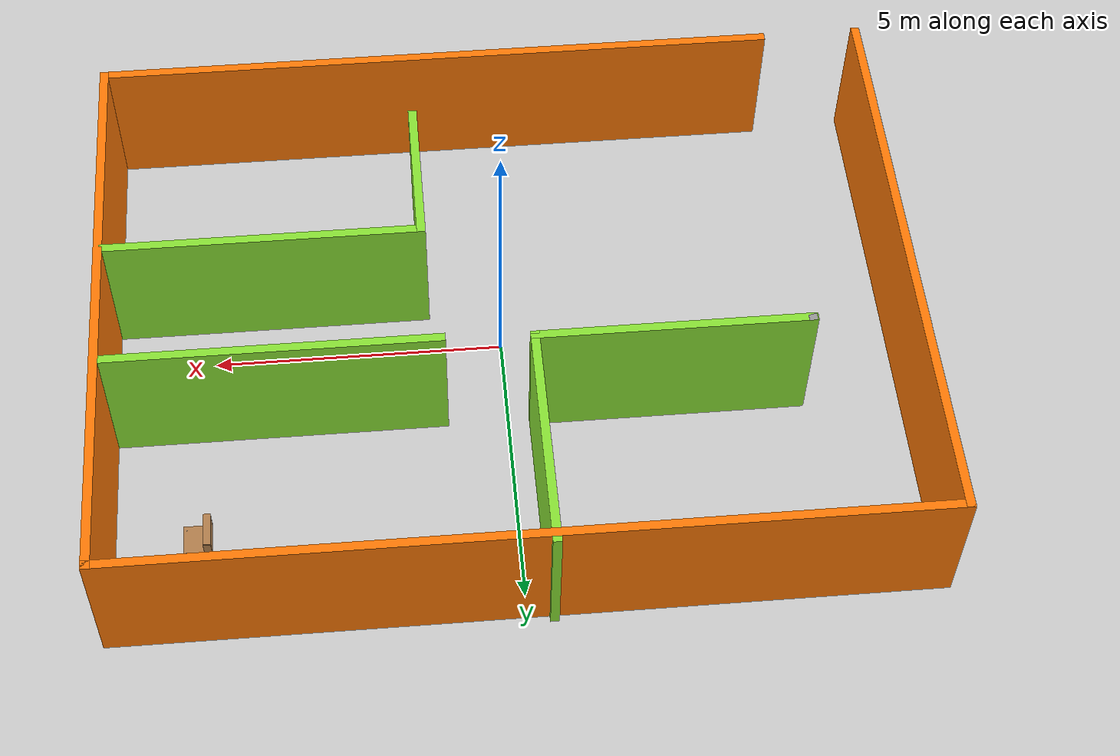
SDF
<sdf version="1.6">
 <world name="default">
  <model name="ground_plane">
   <static>1</static>
   <link name="link">
    <collision name="collision">
     <geometry><plane><normal>0 0 1</normal><size>100 100</size></plane></geometry>
     <surface>
      <contact><collide_bitmask>65535</collide_bitmask></contact>
      <friction><ode><mu>100</mu><mu2>50</mu2></ode></friction>
     </surface>
    </collision>
    <visual name="visual">
     <cast_shadows>0</cast_shadows>
     <geometry><plane><normal>0 0 1</normal><size>100 100</size></plane></geometry>
     <material>
      <script><uri>file://media/materials/scripts/gazebo.material</uri><name>Gazebo/Grey</name></script>
     </material>
    </visual>
   </link>
  </model>
  <model name="mod1">
   <pose>-0.05712 0.335817 0 0 -0 0</pose>
   <link name="Wall_0">
    <collision name="Wall_0_Collision">
     <geometry><box><size>10.25 0.15 2.5</size></box></geometry>
     <pose>0 0 1.25 0 -0 0</pose>
    </collision>
    <visual name="Wall_0_Visual">
     <pose>0 0 1.25 0 -0 0</pose>
     <geometry><box><size>10.25 0.15 2.5</size></box></geometry>
     <material>
      <script><uri>file://media/materials/scripts/gazebo.material</uri><name>Gazebo/Grey</name></script>
      <ambient>0.996078 0.47451 0.0196078 1</ambient>
     </material>
     <meta><layer>0</layer></meta>
    </visual>
    <pose>-6.8 -0.050462 0 0 -0 1.5708</pose>
   </link>
   <link name="Wall_1">
    <collision name="Wall_1_Collision">
     <geometry><box><size>13.75 0.15 2.5</size></box></geometry>
     <pose>0 0 1.25 0 -0 0</pose>
    </collision>
    <visual name="Wall_1_Visual">
     <pose>0 0 1.25 0 -0 0</pose>
     <geometry><box><size>13.75 0.15 2.5</size></box></geometry>
     <material>
      <script><uri>file://media/materials/scripts/gazebo.material</uri><name>Gazebo/Grey</name></script>
      <ambient>0.996078 0.47451 0.0196078 1</ambient>
     </material>
     <meta><layer>0</layer></meta>
    </visual>
    <pose>0 4.99954 0 0 -0 0</pose>
   </link>
   <link name="Wall_10">
    <collision name="Wall_10_Collision">
     <geometry><box><size>5.75 0.15 2.5</size></box></geometry>
     <pose>0 0 1.25 0 -0 0</pose>
    </collision>
    <visual name="Wall_10_Visual">
     <pose>0 0 1.25 0 -0 0</pose>
     <geometry><box><size>5.75 0.15 2.5</size></box></geometry>
     <material>
      <script><uri>file://media/materials/scripts/gazebo.material</uri><name>Gazebo/Grey</name></script>
      <ambient>0.541176 0.886275 0.203922 1</ambient>
     </material>
     <meta><layer>0</layer></meta>
    </visual>
    <pose>3.95816 1.17627 0 0 -0 0</pose>
   </link>
   <link name="Wall_13">
    <collision name="Wall_13_Collision">
     <geometry><box><size>5.5 0.15 2.5</size></box></geometry>
     <pose>0 0 1.25 0 -0 0</pose>
    </collision>
    <visual name="Wall_13_Visual">
     <pose>0 0 1.25 0 -0 0</pose>
     <geometry><box><size>5.5 0.15 2.5</size></box></geometry>
     <material>
      <script><uri>file://media/materials/scripts/gazebo.material</uri><name>Gazebo/Grey</name></script>
      <ambient>0.541176 0.886275 0.203922 1</ambient>
     </material>
     <meta><layer>0</layer></meta>
    </visual>
    <pose>4.02558 -1.1297 0 0 -0 3.14159</pose>
   </link>
   <link name="Wall_14">
    <collision name="Wall_14_Collision">
     <geometry><box><size>2.75 0.15 2.5</size></box></geometry>
     <pose>0 0 1.25 0 -0 0</pose>
    </collision>
    <visual name="Wall_14_Visual">
     <pose>0 0 1.25 0 -0 0</pose>
     <geometry><box><size>2.75 0.15 2.5</size></box></geometry>
     <material>
      <script><uri>file://media/materials/scripts/gazebo.material</uri><name>Gazebo/Grey</name></script>
      <ambient>0.541176 0.886275 0.203922 1</ambient>
     </material>
     <meta><layer>0</layer></meta>
    </visual>
    <pose>1.35058 -2.4297 0 0 -0 -1.5708</pose>
   </link>
   <link name="Wall_2">
    <collision name="Wall_2_Collision">
     <geometry><box><size>10.25 0.15 2.5</size></box></geometry>
     <pose>0 0 1.25 0 -0 0</pose>
    </collision>
    <visual name="Wall_2_Visual">
     <pose>0 0 1.25 0 -0 0</pose>
     <geometry><box><size>10.25 0.15 2.5</size></box></geometry>
     <material>
      <script><uri>file://media/materials/scripts/gazebo.material</uri><name>Gazebo/Grey</name></script>
      <ambient>0.996078 0.47451 0.0196078 1</ambient>
     </material>
     <meta><layer>0</layer></meta>
    </visual>
    <pose>6.8 -0.050462 0 0 -0 -1.5708</pose>
   </link>
   <link name="Wall_3">
    <collision name="Wall_3_Collision">
     <geometry><box><size>12 0.15 2.5</size></box></geometry>
     <pose>0 0 1.25 0 -0 0</pose>
    </collision>
    <visual name="Wall_3_Visual">
     <pose>0 0 1.25 0 -0 0</pose>
     <geometry><box><size>12 0.15 2.5</size></box></geometry>
     <material>
      <script><uri>file://media/materials/scripts/gazebo.material</uri><name>Gazebo/Grey</name></script>
      <ambient>0.996078 0.47451 0.0196078 1</ambient>
     </material>
     <meta><layer>0</layer></meta>
    </visual>
    <pose>0.875 -5.10046 0 0 -0 3.14159</pose>
   </link>
   <link name="Wall_6">
    <collision name="Wall_6_Collision">
     <geometry><box><size>4 0.15 2.5</size></box></geometry>
     <pose>0 0 1.25 0 -0 0</pose>
    </collision>
    <visual name="Wall_6_Visual">
     <pose>0 0 1.25 0 -0 0</pose>
     <geometry><box><size>4 0.15 2.5</size></box></geometry>
     <material>
      <script><uri>file://media/materials/scripts/gazebo.material</uri><name>Gazebo/Grey</name></script>
      <ambient>0.541176 0.886275 0.203922 1</ambient>
     </material>
     <meta><layer>0</layer></meta>
    </visual>
    <pose>-0.379149 3.17546 0 0 -0 -1.5708</pose>
   </link>
   <link name="Wall_7">
    <collision name="Wall_7_Collision">
     <geometry><box><size>4.75 0.15 2.5</size></box></geometry>
     <pose>0 0 1.25 0 -0 0</pose>
    </collision>
    <visual name="Wall_7_Visual">
     <pose>0 0 1.25 0 -0 0</pose>
     <geometry><box><size>4.75 0.15 2.5</size></box></geometry>
     <material>
      <script><uri>file://media/materials/scripts/gazebo.material</uri><name>Gazebo/Grey</name></script>
      <ambient>0.541176 0.886275 0.203922 1</ambient>
     </material>
     <meta><layer>0</layer></meta>
    </visual>
    <pose>-2.67915 1.25046 0 0 -0 3.14159</pose>
   </link>
   <link name="Wall_8">
    <collision name="Wall_8_Collision">
     <geometry><box><size>0.16 0.15 2.5</size></box></geometry>
     <pose>0 0 1.25 0 -0 0</pose>
    </collision>
    <visual name="Wall_8_Visual">
     <pose>0 0 1.25 0 -0 0</pose>
     <geometry><box><size>0.16 0.15 2.5</size></box></geometry>
     <material>
      <script><uri>file://media/materials/scripts/gazebo.material</uri><name>Gazebo/Grey</name></script>
      <ambient>1 1 1 1</ambient>
     </material>
     <meta><layer>0</layer></meta>
    </visual>
    <pose>-4.97415 1.25046 0 0 -0 0</pose>
   </link>
   <static>1</static>
  </model>
  <model name="bookshelf_0">
   <static>1</static>
   <link name="link">
    <inertial><mass>1</mass></inertial>
    <collision name="back">
     <pose>0 0.005 0.6 0 -0 0</pose>
     <geometry><box><size>0.9 0.01 1.2</size></box></geometry>
    </collision>
    <visual name="visual1">
     <pose>0 0.005 0.6 0 -0 0</pose>
     <geometry><box><size>0.9 0.01 1.2</size></box></geometry>
     <material>
      <script><uri>file://media/materials/scripts/gazebo.material</uri><name>Gazebo/Wood</name></script>
     </material>
    </visual>
    <collision name="left_side">
     <pose>0.45 -0.195 0.6 0 -0 0</pose>
     <geometry><box><size>0.02 0.4 1.2</size></box></geometry>
    </collision>
    <visual name="visual2">
     <pose>0.45 -0.195 0.6 0 -0 0</pose>
     <geometry><box><size>0.02 0.4 1.2</size></box></geometry>
     <material>
      <script><uri>file://media/materials/scripts/gazebo.material</uri><name>Gazebo/Wood</name></script>
     </material>
    </visual>
    <collision name="right_side">
     <pose>-0.45 -0.195 0.6 0 -0 0</pose>
     <geometry><box><size>0.02 0.4 1.2</size></box></geometry>
    </collision>
    <visual name="visual3">
     <pose>-0.45 -0.195 0.6 0 -0 0</pose>
     <geometry><box><size>0.02 0.4 1.2</size></box></geometry>
     <material>
      <script><uri>file://media/materials/scripts/gazebo.material</uri><name>Gazebo/Wood</name></script>
     </material>
    </visual>
    <collision name="bottom">
     <pose>0 -0.195 0.03 0 -0 0</pose>
     <geometry><box><size>0.88 0.4 0.06</size></box></geometry>
    </collision>
    <visual name="visual4">
     <pose>0 -0.195 0.03 0 -0 0</pose>
     <geometry><box><size>0.88 0.4 0.06</size></box></geometry>
     <material>
      <script><uri>file://media/materials/scripts/gazebo.material</uri><name>Gazebo/Wood</name></script>
     </material>
    </visual>
    <collision name="top">
     <pose>0 -0.195 1.19 0 -0 0</pose>
     <geometry><box><size>0.88 0.4 0.02</size></box></geometry>
    </collision>
    <visual name="visual5">
     <pose>0 -0.195 1.19 0 -0 0</pose>
     <geometry><box><size>0.88 0.4 0.02</size></box></geometry>
     <material>
      <script><uri>file://media/materials/scripts/gazebo.material</uri><name>Gazebo/Wood</name></script>
     </material>
    </visual>
    <collision name="low_shelf">
     <pose>0 -0.195 0.43 0 -0 0</pose>
     <geometry><box><size>0.88 0.4 0.02</size></box></geometry>
    </collision>
    <visual name="visual6">
     <pose>0 -0.195 0.43 0 -0 0</pose>
     <geometry><box><size>0.88 0.4 0.02</size></box></geometry>
     <material>
      <script><uri>file://media/materials/scripts/gazebo.material</uri><name>Gazebo/Wood</name></script>
     </material>
    </visual>
    <collision name="high_shelf">
     <pose>0 -0.195 0.8 0 -0 0</pose>
     <geometry><box><size>0.88 0.4 0.02</size></box></geometry>
    </collision>
    <visual name="visual7">
     <pose>0 -0.195 0.8 0 -0 0</pose>
     <geometry><box><size>0.88 0.4 0.02</size></box></geometry>
     <material>
      <script><uri>file://media/materials/scripts/gazebo.material</uri><name>Gazebo/Wood</name></script>
     </material>
    </visual>
   </link>
   <pose>6.05705 5.16684 0 0 -0 0</pose>
  </model>
  <model name="wooden_case_0">
   <link name="base">
    <pose>0 0 0.024 0 -0 0</pose>
    <inertial>
     <pose>-0.022184 0 0.171592 0 -0 0</pose>
     <mass>3.96264</mass>
     <inertia>
      <ixx>0.213536</ixx>
      <ixy>0</ixy>
      <ixz>0.000779377</ixz>
      <iyy>0.0708943</iyy>
      <iyz>0</iyz>
      <izz>0.154604</izz>
     </inertia>
    </inertial>
    <collision name="collision_back">
     <pose>-0.053975 0 0.1778 0 -0 0</pose>
     <geometry><box><size>0.01905 0.5461 0.3175</size></box></geometry>
     <surface>
      <contact>
       <poissons_ratio>0.347</poissons_ratio>
       <elastic_modulus>8.8e+09</elastic_modulus>
       <ode><kp>100000</kp><kd>100</kd><max_vel>100</max_vel><min_depth>0.001</min_depth></ode>
      </contact>
      <friction>
       <torsional>
        <coefficient>1</coefficient>
        <use_patch_radius>0</use_patch_radius>
        <surface_radius>0.01</surface_radius>
       </torsional>
      </friction>
     </surface>
    </collision>
    <visual name="visual_back">
     <pose>-0.053975 0 0.1778 0 -0 0</pose>
     <geometry><box><size>0.01905 0.5461 0.3175</size></box></geometry>
     <material>
      <script><uri>file://media/materials/scripts/gazebo.material</uri><name>Gazebo/Wood</name></script>
     </material>
    </visual>
    <collision name="collision_bottom">
     <pose>0 0 0.009525 0 -0 0</pose>
     <geometry><box><size>0.127 0.5842 0.01905</size></box></geometry>
     <surface>
      <contact>
       <poissons_ratio>0.347</poissons_ratio>
       <elastic_modulus>8.8e+09</elastic_modulus>
       <ode><kp>100000</kp><kd>100</kd><max_vel>100</max_vel><min_depth>0.001</min_depth></ode>
      </contact>
      <friction>
       <torsional>
        <coefficient>1</coefficient>
        <use_patch_radius>0</use_patch_radius>
        <surface_radius>0.01</surface_radius>
       </torsional>
      </friction>
     </surface>
    </collision>
    <visual name="visual_bottom">
     <pose>0 0 0.009525 0 -0 0</pose>
     <geometry><box><size>0.127 0.5842 0.01905</size></box></geometry>
     <material>
      <script><uri>file://media/materials/scripts/gazebo.material</uri><name>Gazebo/Wood</name></script>
     </material>
    </visual>
    <collision name="collision_top">
     <pose>0 0 0.346075 0 -0 0</pose>
     <geometry><box><size>0.127 0.5842 0.01905</size></box></geometry>
     <surface>
      <contact>
       <poissons_ratio>0.347</poissons_ratio>
       <elastic_modulus>8.8e+09</elastic_modulus>
       <ode><kp>100000</kp><kd>100</kd><max_vel>100</max_vel><min_depth>0.001</min_depth></ode>
      </contact>
      <friction>
       <torsional>
        <coefficient>1</coefficient>
        <use_patch_radius>0</use_patch_radius>
        <surface_radius>0.01</surface_radius>
       </torsional>
      </friction>
     </surface>
    </collision>
    <visual name="visual_top">
     <pose>0 0 0.346075 0 -0 0</pose>
     <geometry><box><size>0.127 0.5842 0.01905</size></box></geometry>
     <material>
      <script><uri>file://media/materials/scripts/gazebo.material</uri><name>Gazebo/Wood</name></script>
     </material>
    </visual>
    <collision name="collision_left">
     <pose>0 -0.282575 0.1778 0 -0 0</pose>
     <geometry><box><size>0.127 0.01905 0.3175</size></box></geometry>
     <surface>
      <contact>
       <poissons_ratio>0.347</poissons_ratio>
       <elastic_modulus>8.8e+09</elastic_modulus>
       <ode><kp>100000</kp><kd>100</kd><max_vel>100</max_vel><min_depth>0.001</min_depth></ode>
      </contact>
      <friction>
       <torsional>
        <coefficient>1</coefficient>
        <use_patch_radius>0</use_patch_radius>
        <surface_radius>0.01</surface_radius>
       </torsional>
      </friction>
     </surface>
    </collision>
    <visual name="visual_left">
     <pose>0 -0.282575 0.1778 0 -0 0</pose>
     <geometry><box><size>0.127 0.01905 0.3175</size></box></geometry>
     <material>
      <script><uri>file://media/materials/scripts/gazebo.material</uri><name>Gazebo/Wood</name></script>
     </material>
    </visual>
    <collision name="collision_right">
     <pose>0 0.282575 0.1778 0 -0 0</pose>
     <geometry><box><size>0.127 0.01905 0.3175</size></box></geometry>
     <surface>
      <contact>
       <poissons_ratio>0.347</poissons_ratio>
       <elastic_modulus>8.8e+09</elastic_modulus>
       <ode><kp>100000</kp><kd>100</kd><max_vel>100</max_vel><min_depth>0.001</min_depth></ode>
      </contact>
      <friction>
       <torsional>
        <coefficient>1</coefficient>
        <use_patch_radius>0</use_patch_radius>
        <surface_radius>0.01</surface_radius>
       </torsional>
      </friction>
     </surface>
    </collision>
    <visual name="visual_right">
     <pose>0 0.282575 0.1778 0 -0 0</pose>
     <geometry><box><size>0.127 0.01905 0.3175</size></box></geometry>
     <material>
      <script><uri>file://media/materials/scripts/gazebo.material</uri><name>Gazebo/Wood</name></script>
     </material>
    </visual>
    <collision name="collision_block_left">
     <pose>0.0095 -0.2151 -0.012 0 -0 0</pose>
     <geometry><box><size>0.108 0.05 0.024</size></box></geometry>
     <surface>
      <contact>
       <poissons_ratio>0.347</poissons_ratio>
       <elastic_modulus>8.8e+09</elastic_modulus>
       <ode><kp>100000</kp><kd>100</kd><max_vel>100</max_vel><min_depth>0.001</min_depth></ode>
      </contact>
      <friction>
       <torsional>
        <coefficient>1</coefficient>
        <use_patch_radius>0</use_patch_radius>
        <surface_radius>0.01</surface_radius>
       </torsional>
      </friction>
     </surface>
    </collision>
    <visual name="visual_block_left">
     <pose>0.0095 -0.2151 -0.012 0 -0 0</pose>
     <geometry><box><size>0.108 0.05 0.024</size></box></geometry>
     <material>
      <script><uri>file://media/materials/scripts/gazebo.material</uri><name>Gazebo/Wood</name></script>
     </material>
    </visual>
    <collision name="collision_block_right">
     <pose>0.0095 0.2151 -0.012 0 -0 0</pose>
     <geometry><box><size>0.108 0.05 0.024</size></box></geometry>
     <surface>
      <contact>
       <poissons_ratio>0.347</poissons_ratio>
       <elastic_modulus>8.8e+09</elastic_modulus>
       <ode><kp>100000</kp><kd>100</kd><max_vel>100</max_vel><min_depth>0.001</min_depth></ode>
      </contact>
      <friction>
       <torsional>
        <coefficient>1</coefficient>
        <use_patch_radius>0</use_patch_radius>
        <surface_radius>0.01</surface_radius>
       </torsional>
      </friction>
     </surface>
    </collision>
    <visual name="visual_block_right">
     <pose>0.0095 0.2151 -0.012 0 -0 0</pose>
     <geometry><box><size>0.108 0.05 0.024</size></box></geometry>
     <material>
      <script><uri>file://media/materials/scripts/gazebo.material</uri><name>Gazebo/Wood</name></script>
     </material>
    </visual>
   </link>
   <link name="lid">
    <pose>0.243775 0 0.009525 0 -0 0</pose>
    <inertial>
     <mass>1.97874</mass>
     <inertia>
      <ixx>0.0563367</ixx>
      <ixy>0</ixy>
      <ixz>0</ixz>
      <iyy>0.020911</iyy>
      <iyz>0</iyz>
      <izz>0.0771281</izz>
     </inertia>
    </inertial>
    <collision name="collision">
     <geometry><box><size>0.3556 0.5842 0.01905</size></box></geometry>
     <surface>
      <contact>
       <poissons_ratio>0.347</poissons_ratio>
       <elastic_modulus>8.8e+09</elastic_modulus>
       <ode><kp>100000</kp><kd>100</kd><max_vel>100</max_vel><min_depth>0.001</min_depth></ode>
      </contact>
      <friction>
       <torsional>
        <coefficient>1</coefficient>
        <use_patch_radius>0</use_patch_radius>
        <surface_radius>0.01</surface_radius>
       </torsional>
      </friction>
     </surface>
    </collision>
    <visual name="visual">
     <geometry><box><size>0.3556 0.5842 0.01905</size></box></geometry>
     <material>
      <script><uri>file://media/materials/scripts/gazebo.material</uri><name>Gazebo/Wood</name></script>
     </material>
    </visual>
    <visual name="tee_nut_1">
     <pose>0.122 -0.216 0 0 -0 0</pose>
     <geometry><cylinder><radius>0.00635</radius><length>0.0192405</length></cylinder></geometry>
     <material>
      <script><uri>file://media/materials/scripts/gazebo.material</uri><name>Gazebo/Grey</name></script>
     </material>
    </visual>
    <visual name="tee_nut_2">
     <pose>0.122 -0.088 0 0 -0 0</pose>
     <geometry><cylinder><radius>0.00635</radius><length>0.0192405</length></cylinder></geometry>
     <material>
      <script><uri>file://media/materials/scripts/gazebo.material</uri><name>Gazebo/Grey</name></script>
     </material>
    </visual>
    <visual name="tee_nut_3">
     <pose>0.122 0.088 0 0 -0 0</pose>
     <geometry><cylinder><radius>0.00635</radius><length>0.0192405</length></cylinder></geometry>
     <material>
      <script><uri>file://media/materials/scripts/gazebo.material</uri><name>Gazebo/Grey</name></script>
     </material>
    </visual>
    <visual name="tee_nut_4">
     <pose>0.122 0.216 0 0 -0 0</pose>
     <geometry><cylinder><radius>0.00635</radius><length>0.0192405</length></cylinder></geometry>
     <material>
      <script><uri>file://media/materials/scripts/gazebo.material</uri><name>Gazebo/Grey</name></script>
     </material>
    </visual>
   </link>
   <joint name="lid_hinge" type="revolute">
    <pose>-0.1778 0 0.01905 0 -0 0</pose>
    <parent>base</parent>
    <child>lid</child>
    <axis>
     <xyz>0 1 0</xyz>
     <limit><upper>0.523599</upper><lower>-1.5708</lower></limit>
     <use_parent_model_frame>0</use_parent_model_frame>
     <dynamics><spring_reference>0</spring_reference><spring_stiffness>0</spring_stiffness></dynamics>
    </axis>
   </joint>
   <pose>5.13812 3.55275 -0.001057 0 -0.000426 0</pose>
  </model>
 </world>
</sdf>
